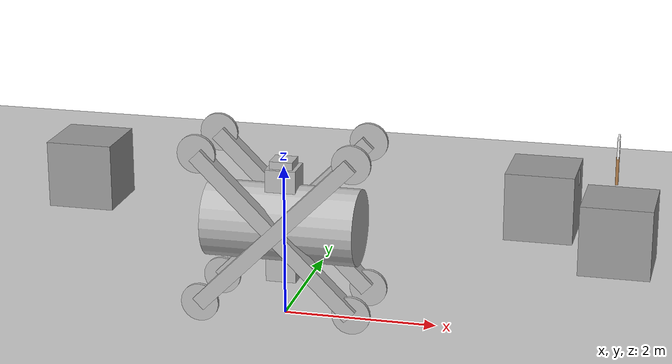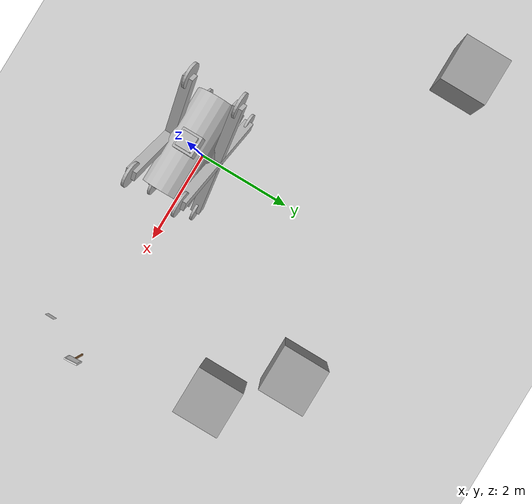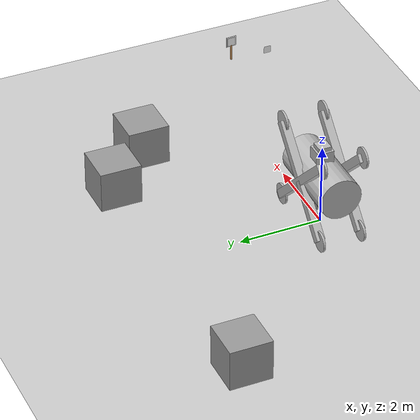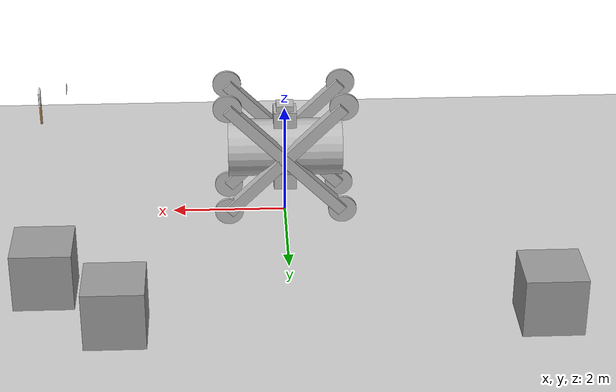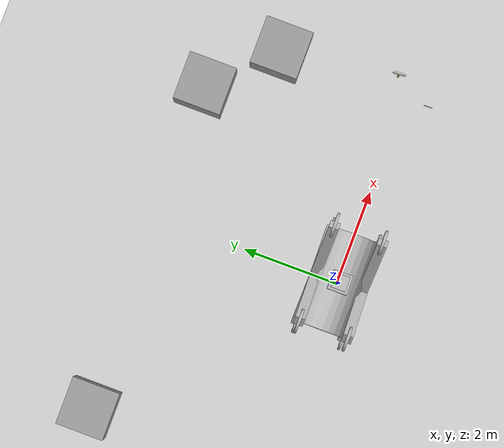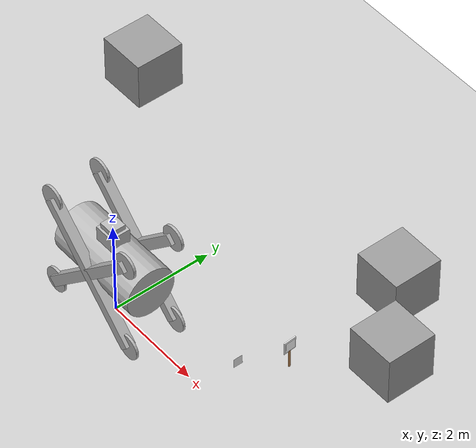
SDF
<sdf version="1.7">
 <world name="default">
  <model name="ground_plane">
   <static>1</static>
   <link name="link">
    <collision name="collision">
     <geometry><plane><normal>0 0 1</normal><size>100 100</size></plane></geometry>
     <surface>
      <contact><collide_bitmask>65535</collide_bitmask></contact>
      <friction><ode><mu>100</mu><mu2>50</mu2></ode></friction>
     </surface>
    </collision>
    <visual name="visual">
     <cast_shadows>0</cast_shadows>
     <geometry><plane><normal>0 0 1</normal><size>100 100</size></plane></geometry>
     <material>
      <script><uri>file://media/materials/scripts/gazebo.material</uri><name>Gazebo/Grey</name></script>
     </material>
    </visual>
   </link>
  </model>
  <model name="01-myfirst">
   <link name="base_link">
    <inertial>
     <pose>0 0 0.425317 0 -0 0</pose>
     <mass>19.576</mass>
     <inertia>
      <ixx>22.5258</ixx>
      <ixy>0</ixy>
      <ixz>1.47561e-18</ixz>
      <iyy>40.1663</iyy>
      <iyz>0</iyz>
      <izz>21.3885</izz>
     </inertia>
    </inertial>
    <collision name="base_link_collision">
     <pose>0 0 1 3.14159 1.57079 3.14159</pose>
     <geometry><cylinder><length>2</length><radius>0.5</radius></cylinder></geometry>
    </collision>
    <collision name="base_link_fixed_joint_lump__left-left_collision_1">
     <pose>0 -0.5 1 0 0.7854 0</pose>
     <geometry><box><size>0.2 0.2 2.8284</size></box></geometry>
    </collision>
    <collision name="base_link_fixed_joint_lump__bottom ll wheel_collision_2">
     <pose>-1 -0.5 0 1.57089 1.57079 -3.14159</pose>
     <geometry><cylinder><length>0.05</length><radius>0.25</radius></cylinder></geometry>
    </collision>
    <collision name="base_link_fixed_joint_lump__top ll wheel_collision_3">
     <pose>-1 -0.5 2 1.57089 1.57079 -3.14159</pose>
     <geometry><cylinder><length>0.05</length><radius>0.25</radius></cylinder></geometry>
    </collision>
    <collision name="base_link_fixed_joint_lump__left-right_collision_4">
     <pose>0 -0.5 1 0 -0.7854 0</pose>
     <geometry><box><size>0.2 0.2 2.8284</size></box></geometry>
    </collision>
    <collision name="base_link_fixed_joint_lump__bottom lr wheel_collision_5">
     <pose>1 -0.5 0 1.57089 1.57079 -3.14159</pose>
     <geometry><cylinder><length>0.05</length><radius>0.25</radius></cylinder></geometry>
    </collision>
    <collision name="base_link_fixed_joint_lump__top lr wheel_collision_6">
     <pose>1 -0.5 2 1.57089 1.57079 -3.14159</pose>
     <geometry><cylinder><length>0.05</length><radius>0.25</radius></cylinder></geometry>
    </collision>
    <collision name="base_link_fixed_joint_lump__right-left_collision_7">
     <pose>0 0.5 1 0 0.7854 0</pose>
     <geometry><box><size>0.2 0.2 2.8284</size></box></geometry>
    </collision>
    <collision name="base_link_fixed_joint_lump__bottom rl wheel_collision_8">
     <pose>-1 0.5 0 1.57089 1.57079 -3.14159</pose>
     <geometry><cylinder><length>0.05</length><radius>0.25</radius></cylinder></geometry>
    </collision>
    <collision name="base_link_fixed_joint_lump__top rl wheel_collision_9">
     <pose>-1 0.5 2 1.57089 1.57079 -3.14159</pose>
     <geometry><cylinder><length>0.05</length><radius>0.25</radius></cylinder></geometry>
    </collision>
    <collision name="base_link_fixed_joint_lump__right-right_collision_10">
     <pose>0 0.5 1 0 -0.7854 0</pose>
     <geometry><box><size>0.2 0.2 2.8284</size></box></geometry>
    </collision>
    <collision name="base_link_fixed_joint_lump__bottom rr wheel_collision_11">
     <pose>1 0.5 0 1.57089 1.57079 -3.14159</pose>
     <geometry><cylinder><length>0.05</length><radius>0.25</radius></cylinder></geometry>
    </collision>
    <collision name="base_link_fixed_joint_lump__top rr wheel_collision_12">
     <pose>1 0.5 2 1.57089 1.57079 -3.14159</pose>
     <geometry><cylinder><length>0.05</length><radius>0.25</radius></cylinder></geometry>
    </collision>
    <collision name="base_link_fixed_joint_lump__shaft_collision_13">
     <pose>0 0 1 0 -0 0</pose>
     <geometry><box><size>0.4 0.4 1.5</size></box></geometry>
    </collision>
    <collision name="base_link_fixed_joint_lump__camera_collision_14">
     <pose>0 0 1.75 0 -0 0</pose>
     <geometry><box><size>0.2 0.2 0.2</size></box></geometry>
    </collision>
    <visual name="base_link_visual">
     <pose>0 0 1 3.14159 1.57079 3.14159</pose>
     <geometry><cylinder><length>2</length><radius>0.5</radius></cylinder></geometry>
    </visual>
    <visual name="base_link_fixed_joint_lump__left-left_visual_1">
     <pose>0 -0.5 1 0 0.7854 0</pose>
     <geometry><box><size>0.2 0.2 2.8284</size></box></geometry>
    </visual>
    <visual name="base_link_fixed_joint_lump__bottom ll wheel_visual_2">
     <pose>-1 -0.5 0 1.57089 1.57079 -3.14159</pose>
     <geometry><cylinder><length>0.05</length><radius>0.25</radius></cylinder></geometry>
    </visual>
    <visual name="base_link_fixed_joint_lump__top ll wheel_visual_3">
     <pose>-1 -0.5 2 1.57089 1.57079 -3.14159</pose>
     <geometry><cylinder><length>0.05</length><radius>0.25</radius></cylinder></geometry>
    </visual>
    <visual name="base_link_fixed_joint_lump__left-right_visual_4">
     <pose>0 -0.5 1 0 -0.7854 0</pose>
     <geometry><box><size>0.2 0.2 2.8284</size></box></geometry>
    </visual>
    <visual name="base_link_fixed_joint_lump__bottom lr wheel_visual_5">
     <pose>1 -0.5 0 1.57089 1.57079 -3.14159</pose>
     <geometry><cylinder><length>0.05</length><radius>0.25</radius></cylinder></geometry>
    </visual>
    <visual name="base_link_fixed_joint_lump__top lr wheel_visual_6">
     <pose>1 -0.5 2 1.57089 1.57079 -3.14159</pose>
     <geometry><cylinder><length>0.05</length><radius>0.25</radius></cylinder></geometry>
    </visual>
    <visual name="base_link_fixed_joint_lump__right-left_visual_7">
     <pose>0 0.5 1 0 0.7854 0</pose>
     <geometry><box><size>0.2 0.2 2.8284</size></box></geometry>
    </visual>
    <visual name="base_link_fixed_joint_lump__bottom rl wheel_visual_8">
     <pose>-1 0.5 0 1.57089 1.57079 -3.14159</pose>
     <geometry><cylinder><length>0.05</length><radius>0.25</radius></cylinder></geometry>
    </visual>
    <visual name="base_link_fixed_joint_lump__top rl wheel_visual_9">
     <pose>-1 0.5 2 1.57089 1.57079 -3.14159</pose>
     <geometry><cylinder><length>0.05</length><radius>0.25</radius></cylinder></geometry>
    </visual>
    <visual name="base_link_fixed_joint_lump__right-right_visual_10">
     <pose>0 0.5 1 0 -0.7854 0</pose>
     <geometry><box><size>0.2 0.2 2.8284</size></box></geometry>
    </visual>
    <visual name="base_link_fixed_joint_lump__bottom rr wheel_visual_11">
     <pose>1 0.5 0 1.57089 1.57079 -3.14159</pose>
     <geometry><cylinder><length>0.05</length><radius>0.25</radius></cylinder></geometry>
    </visual>
    <visual name="base_link_fixed_joint_lump__top rr wheel_visual_12">
     <pose>1 0.5 2 1.57089 1.57079 -3.14159</pose>
     <geometry><cylinder><length>0.05</length><radius>0.25</radius></cylinder></geometry>
    </visual>
    <visual name="base_link_fixed_joint_lump__shaft_visual_13">
     <pose>0 0 1 0 -0 0</pose>
     <geometry><box><size>0.4 0.4 1.5</size></box></geometry>
    </visual>
    <visual name="base_link_fixed_joint_lump__camera_visual_14">
     <pose>0 0 1.75 0 -0 0</pose>
     <geometry><box><size>0.3 0.3 0.2</size></box></geometry>
    </visual>
    <sensor name="camera" type="camera">
     <update_rate>30</update_rate>
     <camera name="head">
      <horizontal_fov>1.39626</horizontal_fov>
      <image><width>800</width><height>800</height><format>R8G8B8</format></image>
      <clip><near>0.02</near><far>300</far></clip>
      <noise><type>gaussian</type><mean>0</mean><stddev>0.007</stddev></noise>
     </camera>
     <plugin name="camera_controller" filename="libgazebo_ros_camera.so">
      <alwaysOn>1</alwaysOn>
      <updateRate>0.0</updateRate>
      <cameraName>mybot/camera</cameraName>
      <imageTopicName>image_raw</imageTopicName>
      <cameraInfoTopicName>camera_info</cameraInfoTopicName>
      <frameName>camera</frameName>
      <hackBaseline>0.07</hackBaseline>
      <distortionK1>0.0</distortionK1>
      <distortionK2>0.0</distortionK2>
      <distortionK3>0.0</distortionK3>
      <distortionT1>0.0</distortionT1>
      <distortionT2>0.0</distortionT2>
      <robotNamespace>/</robotNamespace>
     </plugin>
     <pose>0 0 1.75 0 -0 0</pose>
    </sensor>
   </link>
   <static>0</static>
   <plugin name="gazebo_ros_control" filename="libgazebo_ros_control.so">
    <robotNamespace>/</robotNamespace>
   </plugin>
   <pose>-4.4e-05 -2.7e-05 0.25 0 -0 6.3e-05</pose>
  </model>
  <model name="aruco_wood_thin">
   <link name="link_0">
    <inertial>
     <mass>1</mass>
     <inertia><ixx>0.145833</ixx><ixy>0</ixy><ixz>0</ixz><iyy>0.145833</iyy><iyz>0</iyz><izz>0.125</izz></inertia>
    </inertial>
    <pose>-0.017932 0.660168 -0.097628 0 -0 0</pose>
    <visual name="visual">
     <geometry><cylinder><radius>0.02</radius><length>0.4</length></cylinder></geometry>
     <material>
      <lighting>1</lighting>
      <script><uri>file://media/materials/scripts/gazebo.material</uri><name>Gazebo/Wood</name></script>
      <shader type="vertex"><normal_map>__default__</normal_map></shader>
      <ambient>0.3 0.3 0.3 1</ambient>
      <diffuse>0.7 0.7 0.7 1</diffuse>
      <specular>0.01 0.01 0.01 1</specular>
      <emissive>0 0 0 1</emissive>
     </material>
    </visual>
    <collision name="collision">
     <geometry><cylinder><radius>0.02</radius><length>0.4</length></cylinder></geometry>
     <surface>
      <friction>
       <ode><mu>1</mu><mu2>1</mu2><fdir1>0 0 0</fdir1><slip1>0</slip1><slip2>0</slip2></ode>
       <torsional>
        <coefficient>1</coefficient>
        <patch_radius>0</patch_radius>
        <surface_radius>0</surface_radius>
        <use_patch_radius>1</use_patch_radius>
        <ode><slip>0</slip></ode>
       </torsional>
      </friction>
      <bounce><restitution_coefficient>0</restitution_coefficient><threshold>1e+06</threshold></bounce>
      <contact>
       <collide_without_contact>0</collide_without_contact>
       <collide_without_contact_bitmask>1</collide_without_contact_bitmask>
       <collide_bitmask>1</collide_bitmask>
       <ode>
        <soft_cfm>0</soft_cfm>
        <soft_erp>0.2</soft_erp>
        <kp>1e+13</kp>
        <kd>1</kd>
        <max_vel>0.01</max_vel>
        <min_depth>0</min_depth>
       </ode>
       <bullet>
        <split_impulse>1</split_impulse>
        <split_impulse_penetration_threshold>-0.01</split_impulse_penetration_threshold>
        <soft_cfm>0</soft_cfm>
        <soft_erp>0.2</soft_erp>
        <kp>1e+13</kp>
        <kd>1</kd>
       </bullet>
      </contact>
     </surface>
    </collision>
   </link>
   <link name="link_1">
    <inertial>
     <mass>1.21407</mass>
     <inertia>
      <ixx>0.00864359</ixx>
      <ixy>0</ixy>
      <ixz>0</ixz>
      <iyy>0.00421539</iyy>
      <iyz>0</iyz>
      <izz>0.00446773</izz>
     </inertia>
    </inertial>
    <pose>-0.025899 0.66382 0.194379 0 -0 0</pose>
    <visual name="visual">
     <geometry><box><size>0.013978 0.209676 0.203642</size></box></geometry>
     <material>
      <script>
       <uri>model://aruco/materials/scripts</uri>
       <uri>model://aruco/materials/textures</uri>
       <name>aruco/marker</name>
      </script>
      <emissive>0 0 0 1</emissive>
      <shader type="vertex"><normal_map>__default__</normal_map></shader>
      <ambient>1 1 1 1</ambient>
      <diffuse>1 1 1 1</diffuse>
      <specular>0 0 0 1</specular>
     </material>
    </visual>
    <collision name="collision">
     <geometry><box><size>0.013978 0.209676 0.203642</size></box></geometry>
     <surface>
      <friction>
       <ode><mu>1</mu><mu2>1</mu2><fdir1>0 0 0</fdir1><slip1>0</slip1><slip2>0</slip2></ode>
       <torsional>
        <coefficient>1</coefficient>
        <patch_radius>0</patch_radius>
        <surface_radius>0</surface_radius>
        <use_patch_radius>1</use_patch_radius>
        <ode><slip>0</slip></ode>
       </torsional>
      </friction>
      <bounce><restitution_coefficient>0</restitution_coefficient><threshold>1e+06</threshold></bounce>
      <contact>
       <collide_without_contact>0</collide_without_contact>
       <collide_without_contact_bitmask>1</collide_without_contact_bitmask>
       <collide_bitmask>1</collide_bitmask>
       <ode>
        <soft_cfm>0</soft_cfm>
        <soft_erp>0.2</soft_erp>
        <kp>1e+13</kp>
        <kd>1</kd>
        <max_vel>0.01</max_vel>
        <min_depth>0</min_depth>
       </ode>
       <bullet>
        <split_impulse>1</split_impulse>
        <split_impulse_penetration_threshold>-0.01</split_impulse_penetration_threshold>
        <soft_cfm>0</soft_cfm>
        <soft_erp>0.2</soft_erp>
        <kp>1e+13</kp>
        <kd>1</kd>
       </bullet>
      </contact>
     </surface>
    </collision>
   </link>
   <link name="link_1_clone">
    <inertial>
     <mass>0.519809</mass>
     <inertia>
      <ixx>0.00549167</ixx>
      <ixy>0</ixy>
      <ixz>0</ixz>
      <iyy>0.00278045</iyy>
      <iyz>0</iyz>
      <izz>0.00275135</izz>
     </inertia>
    </inertial>
    <pose>-0.015207 0.663184 0.195267 0 -0 0</pose>
    <visual name="visual">
     <geometry><box><size>0.021523 0.251103 0.252437</size></box></geometry>
     <material>
      <script>
       <uri>model://aruco/materials/scripts</uri>
       <uri>model://aruco/materials/textures</uri>
       <name>aruco/marker</name>
      </script>
      <shader type="vertex"><normal_map>__default__</normal_map></shader>
      <ambient>1 1 1 1</ambient>
      <diffuse>1 1 1 1</diffuse>
      <specular>0 0 0 1</specular>
      <emissive>0 0 0 1</emissive>
     </material>
    </visual>
    <collision name="collision">
     <geometry><box><size>0.021523 0.251103 0.252437</size></box></geometry>
     <surface>
      <friction>
       <ode><mu>1</mu><mu2>1</mu2><fdir1>0 0 0</fdir1><slip1>0</slip1><slip2>0</slip2></ode>
       <torsional>
        <coefficient>1</coefficient>
        <patch_radius>0</patch_radius>
        <surface_radius>0</surface_radius>
        <use_patch_radius>1</use_patch_radius>
        <ode><slip>0</slip></ode>
       </torsional>
      </friction>
      <bounce><restitution_coefficient>0</restitution_coefficient><threshold>1e+06</threshold></bounce>
      <contact>
       <collide_without_contact>0</collide_without_contact>
       <collide_without_contact_bitmask>1</collide_without_contact_bitmask>
       <collide_bitmask>1</collide_bitmask>
       <ode>
        <soft_cfm>0</soft_cfm>
        <soft_erp>0.2</soft_erp>
        <kp>1e+13</kp>
        <kd>1</kd>
        <max_vel>0.01</max_vel>
        <min_depth>0</min_depth>
       </ode>
       <bullet>
        <split_impulse>1</split_impulse>
        <split_impulse_penetration_threshold>-0.01</split_impulse_penetration_threshold>
        <soft_cfm>0</soft_cfm>
        <soft_erp>0.2</soft_erp>
        <kp>1e+13</kp>
        <kd>1</kd>
       </bullet>
      </contact>
     </surface>
    </collision>
   </link>
   <link name="link_1_clone_0">
    <inertial>
     <mass>0.238009</mass>
     <inertia>
      <ixx>0.00161175</ixx>
      <ixy>0</ixy>
      <ixz>0</ixz>
      <iyy>0.000787067</iyy>
      <iyz>0</iyz>
      <izz>0.000832042</izz>
     </inertia>
    </inertial>
    <pose>-0.00403 0.665261 0.195247 0 -0 0</pose>
    <visual name="visual">
     <geometry><box><size>0.013624 0.204363 0.198738</size></box></geometry>
     <material>
      <script>
       <uri>model://aruco/materials/scripts</uri>
       <uri>model://aruco/materials/textures</uri>
       <name>aruco/marker</name>
      </script>
      <emissive>0 0 0 1</emissive>
      <shader type="vertex"><normal_map>__default__</normal_map></shader>
      <ambient>1 1 1 1</ambient>
      <diffuse>1 1 1 1</diffuse>
      <specular>0 0 0 1</specular>
     </material>
    </visual>
    <collision name="collision">
     <geometry><box><size>0.013624 0.204363 0.198738</size></box></geometry>
     <surface>
      <friction>
       <ode><mu>1</mu><mu2>1</mu2><fdir1>0 0 0</fdir1><slip1>0</slip1><slip2>0</slip2></ode>
       <torsional>
        <coefficient>1</coefficient>
        <patch_radius>0</patch_radius>
        <surface_radius>0</surface_radius>
        <use_patch_radius>1</use_patch_radius>
        <ode><slip>0</slip></ode>
       </torsional>
      </friction>
      <bounce><restitution_coefficient>0</restitution_coefficient><threshold>1e+06</threshold></bounce>
      <contact>
       <collide_without_contact>0</collide_without_contact>
       <collide_without_contact_bitmask>1</collide_without_contact_bitmask>
       <collide_bitmask>1</collide_bitmask>
       <ode>
        <soft_cfm>0</soft_cfm>
        <soft_erp>0.2</soft_erp>
        <kp>1e+13</kp>
        <kd>1</kd>
        <max_vel>0.01</max_vel>
        <min_depth>0</min_depth>
       </ode>
       <bullet>
        <split_impulse>1</split_impulse>
        <split_impulse_penetration_threshold>-0.01</split_impulse_penetration_threshold>
        <soft_cfm>0</soft_cfm>
        <soft_erp>0.2</soft_erp>
        <kp>1e+13</kp>
        <kd>1</kd>
       </bullet>
      </contact>
     </surface>
    </collision>
   </link>
   <joint name="link_0_JOINT_0" type="fixed">
    <parent>link_0</parent>
    <child>link_1</child>
    <physics>
     <ode><limit><cfm>0</cfm><erp>0.2</erp></limit><suspension><cfm>0</cfm><erp>0.2</erp></suspension></ode>
    </physics>
   </joint>
   <joint name="link_1_JOINT_0_0" type="fixed">
    <parent>link_1</parent>
    <child>link_1_clone_0</child>
    <physics>
     <ode><limit><cfm>0</cfm><erp>0.2</erp></limit><suspension><cfm>0</cfm><erp>0.2</erp></suspension></ode>
    </physics>
   </joint>
   <joint name="link_1_JOINT_0" type="fixed">
    <parent>link_1</parent>
    <child>link_1_clone</child>
    <physics>
     <ode><limit><cfm>0</cfm><erp>0.2</erp></limit><suspension><cfm>0</cfm><erp>0.2</erp></suspension></ode>
    </physics>
   </joint>
   <static>0</static>
   <pose>4.24657 -0.308583 2.26434 -1e-05 -7.2e-05 0.06355</pose>
  </model>
  <model name="unit_box_0">
   <pose>-4.10121 3.8136 0.499995 0 1e-05 0</pose>
   <link name="link">
    <inertial>
     <mass>1</mass>
     <inertia>
      <ixx>0.166667</ixx>
      <ixy>0</ixy>
      <ixz>0</ixz>
      <iyy>0.166667</iyy>
      <iyz>0</iyz>
      <izz>0.166667</izz>
     </inertia>
    </inertial>
    <collision name="collision"><geometry><box><size>1 1 1</size></box></geometry></collision>
    <visual name="visual">
     <geometry><box><size>1 1 1</size></box></geometry>
     <material>
      <script><name>Gazebo/Grey</name><uri>file://media/materials/scripts/gazebo.material</uri></script>
     </material>
    </visual>
   </link>
  </model>
  <model name="unit_box_1">
   <pose>2.82969 3.91133 0.499995 1e-05 -0 0</pose>
   <link name="link">
    <inertial>
     <mass>1</mass>
     <inertia>
      <ixx>0.166667</ixx>
      <ixy>0</ixy>
      <ixz>0</ixz>
      <iyy>0.166667</iyy>
      <iyz>0</iyz>
      <izz>0.166667</izz>
     </inertia>
    </inertial>
    <collision name="collision"><geometry><box><size>1 1 1</size></box></geometry></collision>
    <visual name="visual">
     <geometry><box><size>1 1 1</size></box></geometry>
     <material>
      <script><name>Gazebo/Grey</name><uri>file://media/materials/scripts/gazebo.material</uri></script>
     </material>
    </visual>
   </link>
  </model>
  <model name="unit_box_2">
   <pose>4.04317 2.7165 0.499995 0 1e-05 0</pose>
   <link name="link">
    <inertial>
     <mass>1</mass>
     <inertia>
      <ixx>0.166667</ixx>
      <ixy>0</ixy>
      <ixz>0</ixz>
      <iyy>0.166667</iyy>
      <iyz>0</iyz>
      <izz>0.166667</izz>
     </inertia>
    </inertial>
    <collision name="collision"><geometry><box><size>1 1 1</size></box></geometry></collision>
    <visual name="visual">
     <geometry><box><size>1 1 1</size></box></geometry>
     <material>
      <script><name>Gazebo/Grey</name><uri>file://media/materials/scripts/gazebo.material</uri></script>
     </material>
    </visual>
   </link>
  </model>
  <model name="aruco_visual_marker_0">
   <link name="marker">
    <visual name="visual">
     <geometry><box><size>0.1778 0.1778 1e-05</size></box></geometry>
     <material>
      <script>
       <uri>model://aruco_visual_marker_0/materials/scripts</uri>
       <uri>model://aruco_visual_marker_0/materials/textures</uri>
       <name>ArucoVisualMarker0/Marker</name>
      </script>
      <ambient>1 1 1 1</ambient>
      <diffuse>1 1 1 1</diffuse>
      <specular>0 0 0 1</specular>
      <emissive>1 1 1 0</emissive>
      <shader type="vertex"><normal_map>__default__</normal_map></shader>
     </material>
    </visual>
    <collision name="collision"><geometry><box><size>0.1778 0.1778 1e-05</size></box></geometry></collision>
   </link>
   <link name="marker_pad">
    <pose relative_to="marker">0 0 -1e-05 0 -0 0</pose>
    <visual name="visual">
     <geometry><box><size>0.1778 0.1778 1e-05</size></box></geometry>
     <material>
      <lighting>1</lighting>
      <script><uri>file://media/materials/scripts/gazebo.material</uri><name>Gazebo/White</name></script>
      <ambient>0.3 0.3 0.3 1</ambient>
      <diffuse>0.7 0.7 0.7 1</diffuse>
      <specular>0.01 0.01 0.01 1</specular>
      <emissive>1 1 1 0</emissive>
      <shader type="vertex"><normal_map>__default__</normal_map></shader>
     </material>
    </visual>
    <collision name="collision"><geometry><box><size>0.1778 0.1778 1e-05</size></box></geometry></collision>
   </link>
   <joint name="marker_JOINT_marker_pad" type="revolute">
    <parent>marker</parent>
    <child>marker_pad</child>
    <axis>
     <xyz>0 0 1</xyz>
     <limit><upper>0</upper><lower>0</lower></limit>
     <dynamics><spring_reference>0</spring_reference><spring_stiffness>0</spring_stiffness></dynamics>
    </axis>
   </joint>
   <static>1</static>
   <pose>3.80176 -0.40027 2.26986 3.14159 -1.53016 3.14159</pose>
  </model>
 </world>
</sdf>
